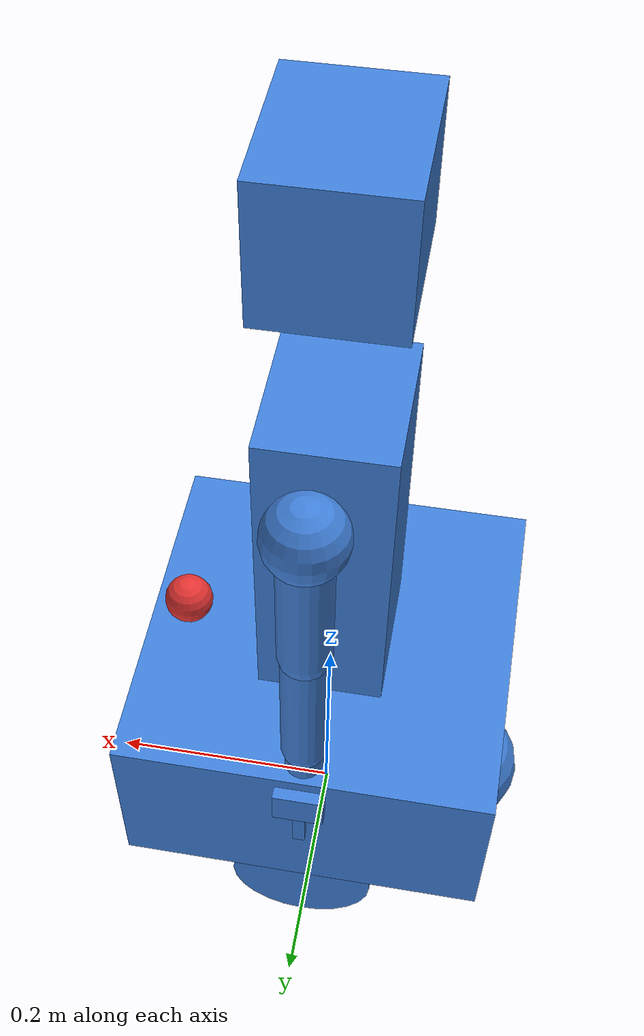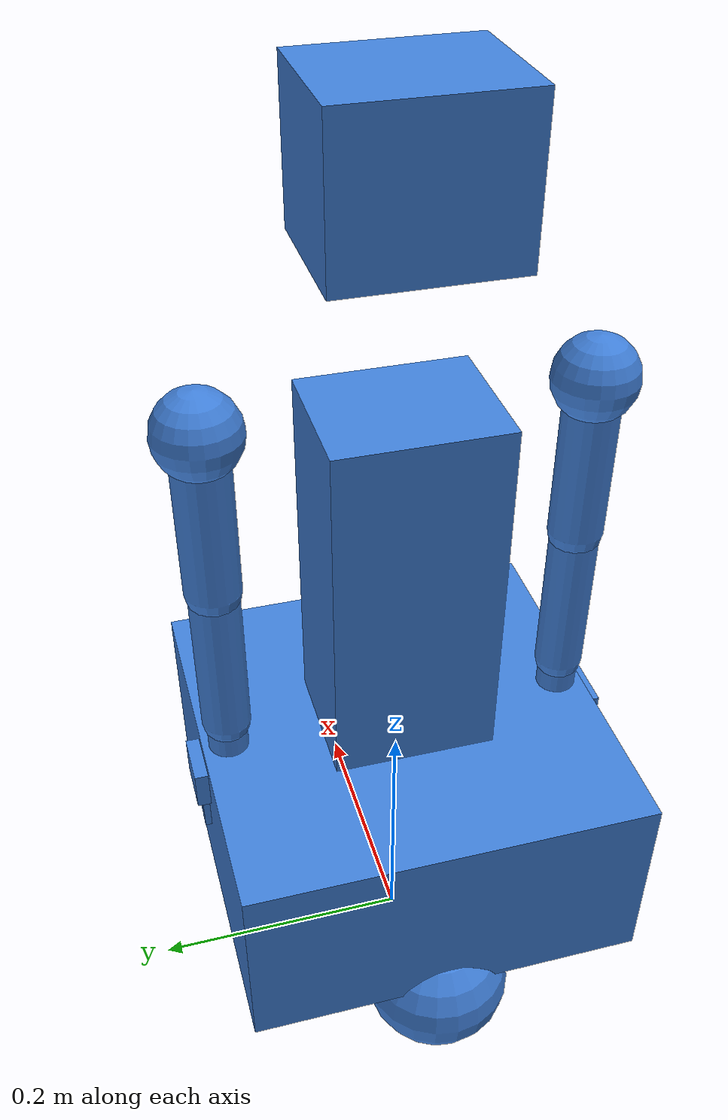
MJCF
<mujoco model="nori">
  <compiler angle="radian" autolimits="true"/>
  <option integrator="implicitfast" cone="elliptic"/>

  <default>
    <joint damping="0.5" armature="0.01"/>
    <geom friction="1 0.05 0.001" density="700" rgba="0.25 0.5 0.85 1"/>
    <default class="servo">
      <!-- position-controlled smart servo (STS3215-class) -->
      <position kp="30" kv="1" forcerange="-15 15"/>
    </default>
    <default class="wheel_drive">
      <velocity kv="8" forcerange="-8 8"/>
    </default>
    <default class="lift_drive">
      <!-- stiff, near-rigid: models a non-backdrivable lead screw holding the upper body -->
      <position kp="4000" kv="150" forcerange="-400 400"/>
    </default>
  </default>

  <worldbody>
    <!-- BASE: differential-drive chassis. Free joint so it stands on wheels+casters. -->
    <body name="base" pos="0 0 0.06">
      <freejoint name="base_free"/>
      <geom name="base_box" type="box" pos="0 0 0.10" size="0.15 0.15 0.075" mass="2.3"/>
      <site name="imu" pos="0 0 0.10" size="0.01"/>
      <site name="lidar" pos="0.12 0 0.19" size="0.02" rgba="0.9 0.2 0.2 1"/>

      <!-- drive wheels: spin about the lateral (y) axle, track ±0.13 -->
      <body name="wheel_left" pos="0 0.13 0">
        <joint name="base_left_wheel" type="hinge" axis="0 1 0"/>
        <geom type="cylinder" fromto="0 -0.012 0 0 0.012 0" size="0.06" mass="0.1"
              friction="1.5 0.05 0.001"/>
      </body>
      <body name="wheel_right" pos="0 -0.13 0">
        <joint name="base_right_wheel" type="hinge" axis="0 1 0"/>
        <geom type="cylinder" fromto="0 -0.012 0 0 0.012 0" size="0.06" mass="0.1"
              friction="1.5 0.05 0.001"/>
      </body>

      <geom name="caster_front" type="sphere" pos="0.12 0 -0.001" size="0.055" mass="0.02"
            friction="0.05 0.005 0.0001"/>
      <geom name="caster_rear" type="sphere" pos="-0.12 0 -0.001" size="0.055" mass="0.02"
            friction="0.05 0.005 0.0001"/>

      <!-- TORSO LIFT: prismatic column, 0..0.30 m travel. Origin at base top plate. -->
      <body name="torso" pos="0 0 0.09">
        <joint name="torso_lift" type="slide" axis="0 0 1" range="0 0.30"/>
        <geom name="torso_col" type="box" pos="0 0 0.175" size="0.05 0.06 0.175" mass="1.4"/>

        <!-- HEAD: pan/tilt, camera at shoulder+0.15 (retracted world z≈0.65) -->
        <body name="head" pos="0 0 0.50">
          <joint name="head_pan" type="hinge" axis="0 0 1" range="-1.5 1.5"/>
          <geom name="neck" type="cylinder" fromto="0 0 -0.03 0 0 0" size="0.02" mass="0.05"/>
          <body name="head_tilt_link">
            <joint name="head_tilt" type="hinge" axis="0 1 0" range="-0.7 0.7"/>
            <geom type="box" size="0.05 0.06 0.05" mass="0.3"/>
            <camera name="head_cam" pos="0.06 0 0" xyaxes="0 -1 0 0 0 1" fovy="60"/>
          </body>
        </body>

        <!-- LEFT ARM: SO-101 layout, shoulder at torso-local z=0.35 (world 0.50), y=+0.13 -->
        <body name="left_shoulder" pos="0 0.13 0.35">
          <joint name="left_shoulder_pan" type="hinge" axis="0 0 1" range="-1.9 1.9"/>
          <geom type="sphere" size="0.03" mass="0.1"/>
          <body name="left_upper_arm">
            <joint name="left_shoulder_lift" type="hinge" axis="0 1 0" range="-1.9 1.9"/>
            <geom type="capsule" fromto="0 0 0 0 0 -0.12" size="0.02" mass="0.12"/>
            <body name="left_forearm" pos="0 0 -0.12">
              <joint name="left_elbow" type="hinge" axis="0 1 0" range="0 2.4"/>
              <geom type="capsule" fromto="0 0 0 0 0 -0.12" size="0.018" mass="0.1"/>
              <body name="left_wrist" pos="0 0 -0.12">
                <joint name="left_wrist_flex" type="hinge" axis="0 1 0" range="-1.9 1.9"/>
                <geom type="capsule" fromto="0 0 0 0 0 -0.05" size="0.015" mass="0.05"/>
                <body name="left_gripper_base" pos="0 0 -0.05">
                  <joint name="left_wrist_roll" type="hinge" axis="0 0 1" range="-3.0 3.0"/>
                  <geom type="box" size="0.02 0.03 0.015" mass="0.04"/>
                  <!-- one moving finger = 1-DOF parallel gripper -->
                  <body name="left_finger" pos="0 0.02 -0.03">
                    <joint name="left_gripper" type="slide" axis="0 -1 0" range="0 0.05"/>
                    <geom type="box" size="0.005 0.005 0.025" mass="0.01"/>
                  </body>
                  <geom name="left_fixed_finger" type="box" pos="0 -0.02 -0.03"
                        size="0.005 0.005 0.025" mass="0.01"/>
                </body>
              </body>
            </body>
          </body>
        </body>

        <!-- RIGHT ARM: mirror (y = -0.13) -->
        <body name="right_shoulder" pos="0 -0.13 0.35">
          <joint name="right_shoulder_pan" type="hinge" axis="0 0 1" range="-1.9 1.9"/>
          <geom type="sphere" size="0.03" mass="0.1"/>
          <body name="right_upper_arm">
            <joint name="right_shoulder_lift" type="hinge" axis="0 1 0" range="-1.9 1.9"/>
            <geom type="capsule" fromto="0 0 0 0 0 -0.12" size="0.02" mass="0.12"/>
            <body name="right_forearm" pos="0 0 -0.12">
              <joint name="right_elbow" type="hinge" axis="0 1 0" range="0 2.4"/>
              <geom type="capsule" fromto="0 0 0 0 0 -0.12" size="0.018" mass="0.1"/>
              <body name="right_wrist" pos="0 0 -0.12">
                <joint name="right_wrist_flex" type="hinge" axis="0 1 0" range="-1.9 1.9"/>
                <geom type="capsule" fromto="0 0 0 0 0 -0.05" size="0.015" mass="0.05"/>
                <body name="right_gripper_base" pos="0 0 -0.05">
                  <joint name="right_wrist_roll" type="hinge" axis="0 0 1" range="-3.0 3.0"/>
                  <geom type="box" size="0.02 0.03 0.015" mass="0.04"/>
                  <body name="right_finger" pos="0 0.02 -0.03">
                    <joint name="right_gripper" type="slide" axis="0 -1 0" range="0 0.05"/>
                    <geom type="box" size="0.005 0.005 0.025" mass="0.01"/>
                  </body>
                  <geom name="right_fixed_finger" type="box" pos="0 -0.02 -0.03"
                        size="0.005 0.005 0.025" mass="0.01"/>
                </body>
              </body>
            </body>
          </body>
        </body>
      </body>
    </body>
  </worldbody>

  <!-- 17 actuators, one per DOF, in JointId order (see firmware/.../messages.hpp). -->
  <actuator>
    <velocity name="a_base_left_wheel"  joint="base_left_wheel"  class="wheel_drive"/>
    <velocity name="a_base_right_wheel" joint="base_right_wheel" class="wheel_drive"/>
    <position name="a_head_pan"  joint="head_pan"  class="servo"/>
    <position name="a_head_tilt" joint="head_tilt" class="servo"/>
    <position name="a_left_shoulder_pan"  joint="left_shoulder_pan"  class="servo"/>
    <position name="a_left_shoulder_lift" joint="left_shoulder_lift" class="servo"/>
    <position name="a_left_elbow"         joint="left_elbow"         class="servo"/>
    <position name="a_left_wrist_flex"    joint="left_wrist_flex"    class="servo"/>
    <position name="a_left_wrist_roll"    joint="left_wrist_roll"    class="servo"/>
    <position name="a_left_gripper"       joint="left_gripper"       class="servo"/>
    <position name="a_right_shoulder_pan"  joint="right_shoulder_pan"  class="servo"/>
    <position name="a_right_shoulder_lift" joint="right_shoulder_lift" class="servo"/>
    <position name="a_right_elbow"         joint="right_elbow"         class="servo"/>
    <position name="a_right_wrist_flex"    joint="right_wrist_flex"    class="servo"/>
    <position name="a_right_wrist_roll"    joint="right_wrist_roll"    class="servo"/>
    <position name="a_right_gripper"       joint="right_gripper"       class="servo"/>
    <position name="a_torso_lift" joint="torso_lift" class="lift_drive"/>
  </actuator>

  <sensor>
    <framepos name="base_pos" objtype="body" objname="base"/>
    <framequat name="base_quat" objtype="body" objname="base"/>
    <gyro name="base_gyro" site="imu"/>
    <accelerometer name="base_acc" site="imu"/>
  </sensor>
</mujoco>
